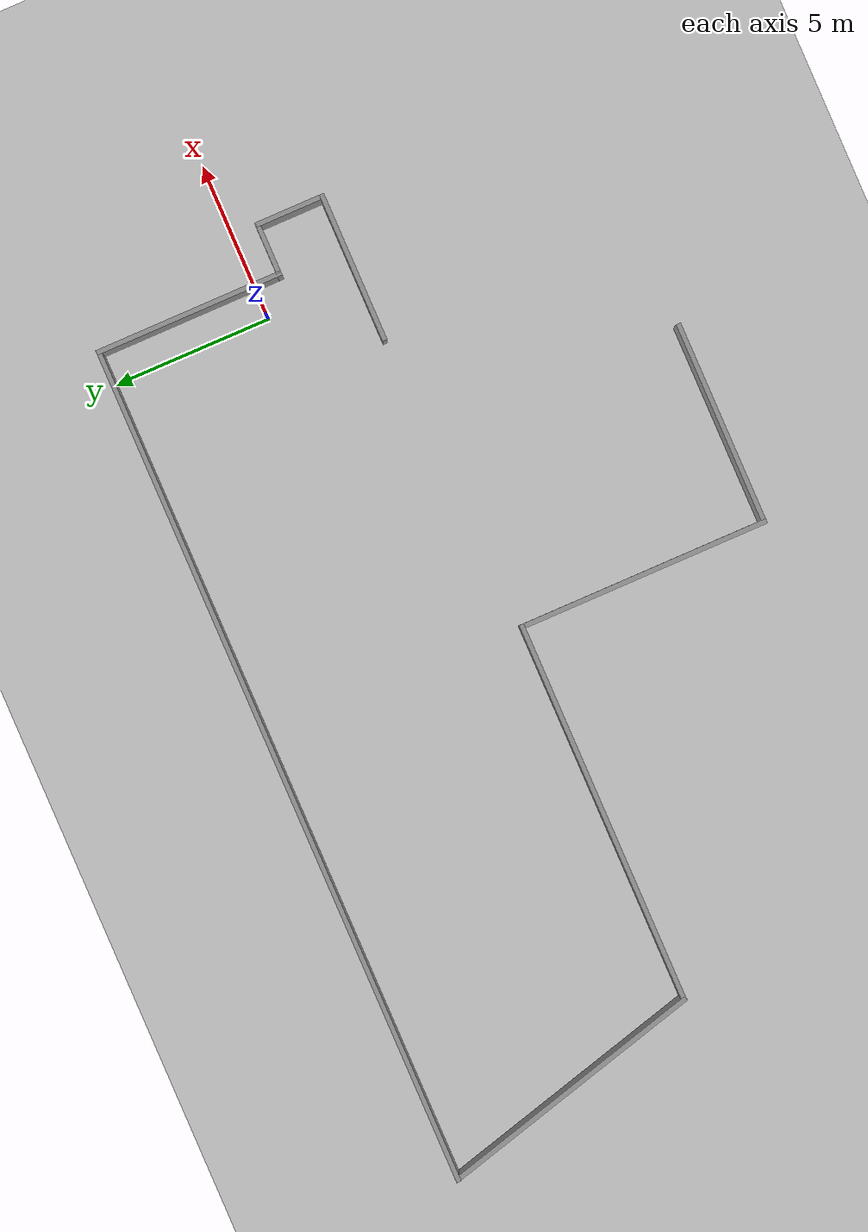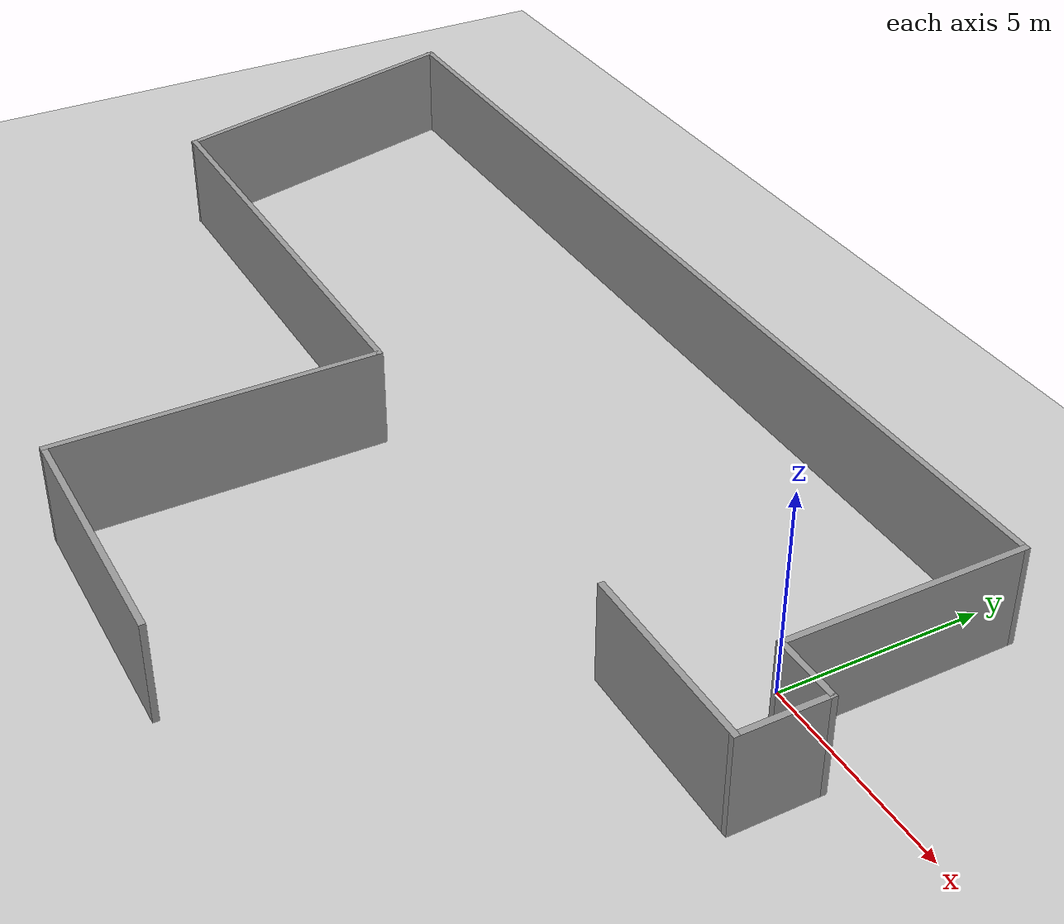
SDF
<sdf version="1.7">
 <world name="default">
  <light name="sun" type="directional">
   <pose>0 0 10 0 -0 0</pose>
   <diffuse>0.8 0.8 0.8 1</diffuse>
   <specular>0.2 0.2 0.2 1</specular>
   <attenuation>
    <range>1000</range>
    <constant>0.9</constant>
    <linear>0.01</linear>
    <quadratic>0.001</quadratic>
   </attenuation>
   <direction>-0.5 0.1 -0.9</direction>
   <spot><inner_angle>0</inner_angle><outer_angle>0</outer_angle><falloff>0</falloff></spot>
  </light>
  <model name="ground_plane">
   <static>1</static>
   <link name="link">
    <collision name="collision">
     <geometry><plane><normal>0 0 1</normal><size>100 100</size></plane></geometry>
     <surface>
      <contact><collide_bitmask>65535</collide_bitmask></contact>
      <friction><ode><mu>100</mu><mu2>50</mu2></ode></friction>
     </surface>
    </collision>
    <visual name="visual">
     <cast_shadows>0</cast_shadows>
     <geometry><plane><normal>0 0 1</normal><size>100 100</size></plane></geometry>
     <material>
      <script><uri>file://media/materials/scripts/gazebo.material</uri><name>Gazebo/Grey</name></script>
     </material>
    </visual>
   </link>
  </model>
  <gravity>0 0 -9.8</gravity>
  <magnetic_field>6e-06 2.3e-05 -4.2e-05</magnetic_field>
  <atmosphere type="adiabatic"/>
  <physics type="ode">
   <max_step_size>0.001</max_step_size>
   <real_time_factor>1</real_time_factor>
   <real_time_update_rate>1000</real_time_update_rate>
  </physics>
  <scene><ambient>0.4 0.4 0.4 1</ambient><background>0.7 0.7 0.7 1</background><shadows>1</shadows></scene>
  <spherical_coordinates>
   <surface_model>EARTH_WGS84</surface_model>
   <latitude_deg>0</latitude_deg>
   <longitude_deg>0</longitude_deg>
   <elevation>0</elevation>
   <heading_deg>0</heading_deg>
  </spherical_coordinates>
  <model name="check">
   <pose>-11.6234 -3.04005 0 0 -0 0</pose>
   <link name="Wall_0">
    <collision name="Wall_0_Collision">
     <geometry><box><size>4.75 0.15 2.5</size></box></geometry>
     <pose>0 0 1.25 0 -0 0</pose>
    </collision>
    <visual name="Wall_0_Visual">
     <pose>0 0 1.25 0 -0 0</pose>
     <geometry><box><size>4.75 0.15 2.5</size></box></geometry>
     <material>
      <script><uri>file://media/materials/scripts/gazebo.material</uri><name>Gazebo/Grey</name></script>
      <ambient>1 1 1 1</ambient>
     </material>
     <meta><layer>0</layer></meta>
    </visual>
    <pose>11.9334 0.120053 0 0 -0 0</pose>
   </link>
   <link name="Wall_1">
    <collision name="Wall_1_Collision">
     <geometry><box><size>2.25 0.15 2.5</size></box></geometry>
     <pose>0 0 1.25 0 -0 0</pose>
    </collision>
    <visual name="Wall_1_Visual">
     <pose>0 0 1.25 0 -0 0</pose>
     <geometry><box><size>2.25 0.15 2.5</size></box></geometry>
     <material>
      <script><uri>file://media/materials/scripts/gazebo.material</uri><name>Gazebo/Grey</name></script>
      <ambient>1 1 1 1</ambient>
     </material>
     <meta><layer>0</layer></meta>
    </visual>
    <pose>14.2334 1.17005 0 0 -0 1.5708</pose>
   </link>
   <link name="Wall_2">
    <collision name="Wall_2_Collision">
     <geometry><box><size>1.75 0.15 2.5</size></box></geometry>
     <pose>0 0 1.25 0 -0 0</pose>
    </collision>
    <visual name="Wall_2_Visual">
     <pose>0 0 1.25 0 -0 0</pose>
     <geometry><box><size>1.75 0.15 2.5</size></box></geometry>
     <material>
      <script><uri>file://media/materials/scripts/gazebo.material</uri><name>Gazebo/Grey</name></script>
      <ambient>1 1 1 1</ambient>
     </material>
     <meta><layer>0</layer></meta>
    </visual>
    <pose>13.4334 2.22005 0 0 -0 3.14159</pose>
   </link>
   <link name="Wall_3">
    <collision name="Wall_3_Collision">
     <geometry><box><size>6 0.15 2.5</size></box></geometry>
     <pose>0 0 1.25 0 -0 0</pose>
    </collision>
    <visual name="Wall_3_Visual">
     <pose>0 0 1.25 0 -0 0</pose>
     <geometry><box><size>6 0.15 2.5</size></box></geometry>
     <material>
      <script><uri>file://media/materials/scripts/gazebo.material</uri><name>Gazebo/Grey</name></script>
      <ambient>1 1 1 1</ambient>
     </material>
     <meta><layer>0</layer></meta>
    </visual>
    <pose>12.6334 5.14505 0 0 -0 1.5708</pose>
   </link>
   <link name="Wall_4">
    <collision name="Wall_4_Collision">
     <geometry><box><size>27 0.15 2.5</size></box></geometry>
     <pose>0 0 1.25 0 -0 0</pose>
    </collision>
    <visual name="Wall_4_Visual">
     <pose>0 0 1.25 0 -0 0</pose>
     <geometry><box><size>27 0.15 2.5</size></box></geometry>
     <material>
      <script><uri>file://media/materials/scripts/gazebo.material</uri><name>Gazebo/Grey</name></script>
      <ambient>1 1 1 1</ambient>
     </material>
     <meta><layer>0</layer></meta>
    </visual>
    <pose>-0.791573 8.07005 0 0 -0 3.14159</pose>
   </link>
   <link name="Wall_5">
    <collision name="Wall_5_Collision">
     <geometry><box><size>8.75 0.15 2.5</size></box></geometry>
     <pose>0 0 1.25 0 -0 0</pose>
    </collision>
    <visual name="Wall_5_Visual">
     <pose>0 0 1.25 0 -0 0</pose>
     <geometry><box><size>8.75 0.15 2.5</size></box></geometry>
     <material>
      <script><uri>file://media/materials/scripts/gazebo.material</uri><name>Gazebo/Grey</name></script>
      <ambient>1 1 1 1</ambient>
     </material>
     <meta><layer>0</layer></meta>
    </visual>
    <pose>-13.1037 3.91657 0 0 -0 -1.309</pose>
   </link>
   <link name="Wall_6">
    <collision name="Wall_6_Collision">
     <geometry><box><size>12.25 0.15 2.5</size></box></geometry>
     <pose>0 0 1.25 0 -0 0</pose>
    </collision>
    <visual name="Wall_6_Visual">
     <pose>0 0 1.25 0 -0 0</pose>
     <geometry><box><size>12.25 0.15 2.5</size></box></geometry>
     <material>
      <script><uri>file://media/materials/scripts/gazebo.material</uri><name>Gazebo/Grey</name></script>
      <ambient>1 1 1 1</ambient>
     </material>
     <meta><layer>0</layer></meta>
    </visual>
    <pose>-5.94073 -0.236909 0 0 -0 0</pose>
   </link>
   <link name="Wall_7">
    <collision name="Wall_7_Collision">
     <geometry><box><size>8 0.15 2.5</size></box></geometry>
     <pose>0 0 1.25 0 -0 0</pose>
    </collision>
    <visual name="Wall_7_Visual">
     <pose>0 0 1.25 0 -0 0</pose>
     <geometry><box><size>8 0.15 2.5</size></box></geometry>
     <material>
      <script><uri>file://media/materials/scripts/gazebo.material</uri><name>Gazebo/Grey</name></script>
      <ambient>1 1 1 1</ambient>
     </material>
     <meta><layer>0</layer></meta>
    </visual>
    <pose>0.109271 -4.16191 0 0 -0 -1.5708</pose>
   </link>
   <link name="Wall_8">
    <collision name="Wall_8_Collision">
     <geometry><box><size>6.5 0.15 2.5</size></box></geometry>
     <pose>0 0 1.25 0 -0 0</pose>
    </collision>
    <visual name="Wall_8_Visual">
     <pose>0 0 1.25 0 -0 0</pose>
     <geometry><box><size>6.5 0.15 2.5</size></box></geometry>
     <material>
      <script><uri>file://media/materials/scripts/gazebo.material</uri><name>Gazebo/Grey</name></script>
      <ambient>1 1 1 1</ambient>
     </material>
     <meta><layer>0</layer></meta>
    </visual>
    <pose>3.28427 -8.08691 0 0 -0 0</pose>
   </link>
   <static>1</static>
  </model>
 </world>
</sdf>
